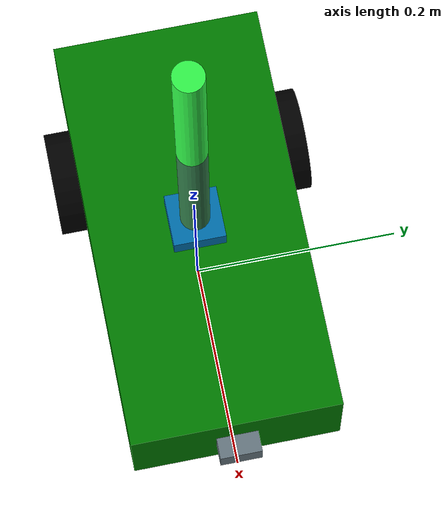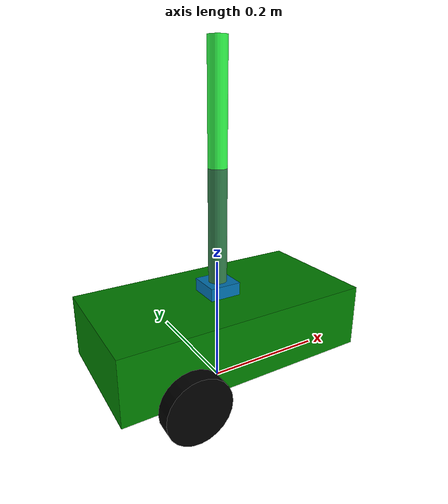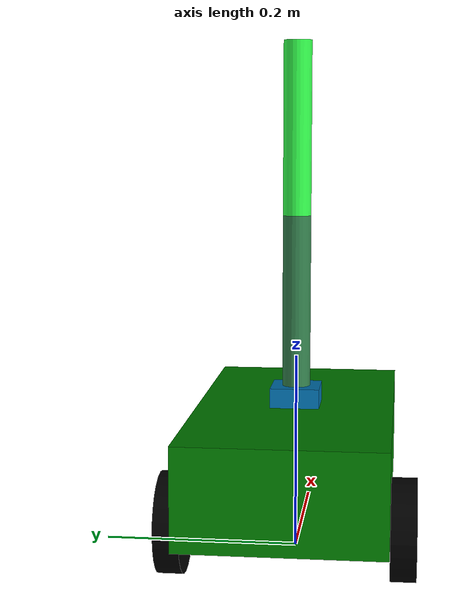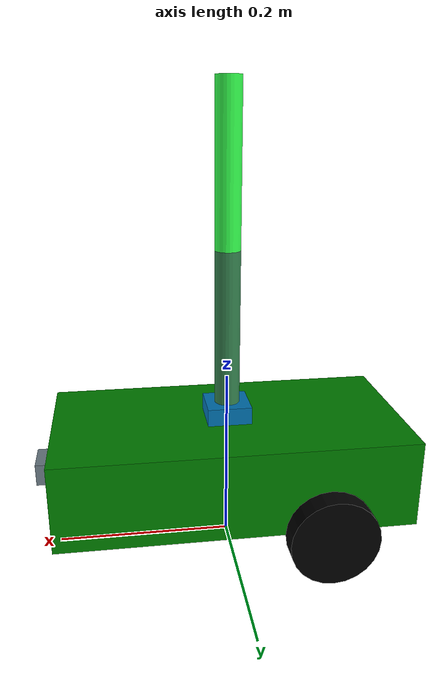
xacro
<?xml version="1.0"?>
<robot xmlns:xacro="http://www.ros.org/wiki/xacro" name="test">

    <!-- Creating Variables -->
    <!-- Base Variables -->
    <xacro:property name='base_length' value='0.4'/>
    <xacro:property name='base_width' value='0.2'/>
    <xacro:property name='base_height' value='0.1'/>

    <!-- Wheels variables -->
    <xacro:property name='wheel_radius' value='${base_length / 8.0}'/>
    <xacro:property name='wheel_length' value='${wheel_radius / 2.0}'/>

    <!-- correct inertia -->
    <xacro:property name='correction' value='2'/>

    <xacro:include filename="macros.xacro"/>

    <material name='green'>
        <color rgba="0.0 0.5 0.0 1.0"/>
    </material>
    <material name="black">
        <color rgba="0.0 0.0 0.0 1.0"/>
    </material>

    <!-- base_foot joints -->
    <link name="foot"/>
    <link name="base_link">

        <visual>
            <geometry>
                <box size="${base_length} ${base_width} ${base_height}"/>
            </geometry>
            <origin xyz="0.0 0.0 ${base_height / 2.0}" rpy="0.0 0.0 0.0"/>
            <material name="green"/>
        </visual>

        <collision>
            <geometry>
                <box size="${base_length} ${base_width} ${base_height}"/>
            </geometry>
            <origin xyz="0.0 0.0 ${base_height / 2.0}" rpy="0.0 0.0 0.0"/>
            <material name="green"/>
        </collision>

        <xacro:box_inertia m='2.0' l='${correction * base_length}' w='${correction * base_width}' h='${correction * base_height}' xyz="0.0 0.0 ${base_height / 2.0}" rpy="0.0 0.0 0.0"/>
    </link>

    <joint name="base_foot" type="fixed">
        <parent link="foot"/>
        <child link="base_link"/>
        <origin xyz="0.0 0 ${base_height / 2.0}" rpy="0 0.0 0.0"/>
    </joint>

    <!-- adding camera -->
    <xacro:include filename="camera.xacro"/>
    <xacro:include filename="arm.xacro"/>

    <!-- left wheel joint -->
    <link name="left_wheel_link">
        <visual>
            <geometry>
                <cylinder radius="${wheel_radius}" length="${wheel_length}"/>
            </geometry>
            <origin xyz="0.0 0.0 0.0" rpy="0.0 0.0 0.0"/>
            <material name="black"/>
        </visual>

        <collision>
            <geometry>
                <cylinder radius="${wheel_radius}" length="${wheel_length}"/>
            </geometry>
            <origin xyz="0.0 0.0 0.0" rpy="0.0 0.0 0.0"/>
        </collision>
        <xacro:cylinder_inertia m='0.25' r='${correction * wheel_radius}' h='${correction * wheel_length}' xyz="0.0 0.0 0.0" rpy="0.0 0.0 0.0" />
    </link>

    <joint name="base_left_wheel_joint" type="continuous">
        <parent link="base_link"/>
        <child link="left_wheel_link"/>
        <origin xyz="${-base_length / 4.0} ${-base_width / 2.0 + -wheel_length / 2.0} 0.0" rpy="${pi / 2.0} 0.0 0.0"/>
        <axis xyz="0.0 0.0 -1"/>
    </joint>

    <!-- right wheel joint -->
    <link name="right_wheel_link">
        <visual>
            <geometry>
                <cylinder radius="${wheel_radius}" length="${wheel_length}"/>
            </geometry>
            <origin xyz="0.0 0.0 0.0" rpy="0.0 0.0 0.0"/>
            <material name="black"/>
        </visual>

        <collision>
            <geometry>
                <cylinder radius="${wheel_radius}" length="${wheel_length}"/>
            </geometry>
            <origin xyz="0.0 0.0 0.0" rpy="0.0 0.0 0.0"/>
        </collision>

        <xacro:cylinder_inertia m='0.25' r='${correction * wheel_radius}' h='${correction * wheel_length}' xyz="0.0 0.0 0.0" rpy="0.0 0.0 0.0" />
    </link>

    <joint name="base_right_wheel_joint" type="continuous">
        <parent link="base_link"/>
        <child link="right_wheel_link"/>
        <origin xyz="${-base_length / 4.0} ${base_width / 2.0 + wheel_length / 2.0} 0.0" rpy="${pi / 2.0} 0.0 0.0"/>
        <axis xyz="0.0 0.0 -1"/>
    </joint>

    <!-- front sphere joint -->
    <link name="front_sphere">
        <visual>
            <geometry>
                <sphere radius="${wheel_radius / 2.0}"/>
            </geometry>
            <origin xyz="0.0 0.0 0.0" rpy="0.0 0.0 0.0"/>
            <material name="black"/>
        </visual>
        <collision>
            <geometry>
                <sphere radius="${wheel_radius / 2.0}"/>
            </geometry>
            <origin xyz="0.0 0.0 0.0" rpy="0.0 0.0 0.0"/>
        </collision>
        <xacro:sphere_inertia m='0.5' r='${correction * wheel_radius / 2.0}' xyz="0.0 0.0 0.0" rpy="0.0 0.0 0.0"/>
    </link>

    <joint name="base_sphere_joint" type="fixed">
        <parent link="base_link"/>
        <child link="front_sphere"/>
        <origin xyz="${base_length / 4.0} 0 ${-wheel_radius / 2.0}" rpy="0 0.0 0.0"/>
    </joint>

</robot>

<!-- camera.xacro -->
<robot xmlns:xacro="http://www.ros.org/wiki/xacro" name="test">
    <xacro:property name='camera_length' value='${base_length/20}'/>
    <xacro:property name='camera_width' value='${base_width/5.0}'/>
    <xacro:property name='camera_height' value='${base_height/4.0}'/>

    <material name='camera_color'>
        <color rgba="0.4196078431372549 0.48627450980392156 0.5215686274509804 1.0"/>
    </material>

    <!-- fix for opencv -->
    <link name="camera_link">
        <visual>
            <origin xyz="0.0 0.0 0.0" rpy="0.0 0.0 0.0"/>
            <geometry>
                <box size="${camera_length} ${camera_width} ${camera_height}"/>
            </geometry>
            <material name="camera_color"/>
            <xacro:box_inertia m='0.05' l='${correction * camera_length}' w='${correction * camera_width}' h='${correction * camera_height}' xyz="0.0 0.0 0.0" rpy="0.0 0.0 0.0"/>
            <collision>
                <origin xyz="0.0 0.0 0.0" rpy="0.0 0.0 0.0"/>
                <geometry>
                    <box size="${base_length/20} ${base_width/10.0} ${base_height/3.0}"/>
                </geometry>
            </collision>
        </visual>

    </link>
    <joint name="base_camera" type="fixed">
        <parent link="base_link"/>
        <child link="camera_link"/>
        <origin xyz="${base_length/2.0 + camera_length/2.0} 0.0 ${base_height/2.0}" rpy="0 0.0 0.0"/>
    </joint>

    <!-- This is a fix for opencv -->
    <link name="camera_link_optical"></link>
    <joint name="camera_optical_joint" type="fixed">
        <origin xyz="0 0 0" rpy="${-pi/2} 0 ${-pi/2}"/>
        <parent link="camera_link"/>
        <child link="camera_link_optical"/>
      </joint>

    <gazebo reference='camera_link'>
        <material>Gazebo/Red</material>
        <sensor name="camera_sensor" type="camera" update_rate="10.0">
            <parent link="camera_link"/>
            <origin xyz="0.0 0.0 0.0" rpy="0.0 0.0 0.0"/>
            <visualize>true</visualize>
            <plugin name="camera_driver" filename="libgazebo_ros_camera.so">
                <frame_name>camera_link_optical</frame_name>
            </plugin>
        </sensor>
    </gazebo>
</robot>

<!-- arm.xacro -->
<robot xmlns:xacro="http://www.ros.org/wiki/xacro" name='arm'>

    <xacro:include filename="macros.xacro"/>
    <xacro:property name='box_placement' value='${base_height}'/>

    <xacro:property name='box_length' value='0.05'/>
    <xacro:property name='box_width' value='0.05'/>
    <xacro:property name='box_height' value='0.02'/>

    <xacro:property name='cylinder_length' value='${box_length * 3.5}'/>
    <xacro:property name='cylinder_radius' value='${box_width/3.5}'/>

    <material name='arm1'>
        <color rgba="0.2 0.5 0.3 1.0"/>
    </material>
    <material name='arm2'>
        <color rgba="0.2 1 0.3 1.0"/>
    </material>

    <link name="arm_base">
        <visual>
            <origin xyz="0.0 0.0 0.0" rpy="0.0 0.0 0.0"/>
            <geometry>
                <box size="${box_length} ${box_width} ${box_height}"/>
            </geometry>
        </visual>
        <xacro:box_inertia m='0.05' l='${box_length}' w='${box_width}' h='${box_height}' xyz='0.0 0.0 0.0' rpy='0.0 0.0 0.0'/>
        <collision>
            <geometry>
                <box size="${box_length} ${box_width} ${box_height}"/>
            </geometry>
        </collision>

    </link>

    <joint name="base_armbase" type="fixed">
        <parent link="base_link"/>
        <child link="arm_base"/>
        <origin xyz="0.0 0.0 ${box_placement + box_height/2.0}" rpy="0.0 0.0 0.0"/>
    </joint>

    <link name="first_arm_link">
        <visual>
            <origin xyz="0.0 0.0 ${cylinder_length/2.0}" rpy="0.0 0.0 0.0"/>
            <material name="arm1"/>
            <geometry>
                <cylinder radius="${cylinder_radius}" length="${cylinder_length}"/>
            </geometry>
        </visual>
        <collision>
            <geometry>
                <cylinder radius="${cylinder_radius}" length="${cylinder_length}"/>
            </geometry>
        </collision>
        <xacro:cylinder_inertia m='0.1' r='${1.5*cylinder_radius}' h='${1.5*cylinder_length}' xyz='0.0 0.0 0.0' rpy='0.0 0.0 0.0'/>

    </link>

    <joint name="box_arm_joint" type="revolute">
        <parent link="arm_base"/>
        <child link="first_arm_link"/>
        <axis xyz="0 1 0"/>
        <limit lower="0.0" upper="${pi/2.0}" velocity="50.0" effort="1000.0"/>
        <origin xyz="0 0 ${box_height/2.0}" rpy="0 0 0"/>
    </joint>

    <link name="second_arm_link">
        <visual>
            <origin xyz="0.0 0.0 ${cylinder_length/2.0}" rpy="0.0 0.0 0.0"/>
            <material name="arm2"/>
            <geometry>
                <cylinder radius="${cylinder_radius}" length="${cylinder_length}"/>
            </geometry>
        </visual>
        <collision>
            <geometry>
                <cylinder radius="${cylinder_radius}" length="${cylinder_length}"/>
            </geometry>
        </collision>
        <xacro:cylinder_inertia m='0.1' r='${1.5*cylinder_radius}' h='${1.5*cylinder_length}' xyz='0.0 0.0 0.0' rpy='0.0 0.0 0.0'/>

    </link>

    <joint name="second_arm_joint" type="revolute">
        <parent link="first_arm_link"/>
        <child link="second_arm_link"/>
        <axis xyz="0 1 0"/>
        <limit lower="0.0" upper="${pi/2.0}" velocity="50.0" effort="1000.0"/>
        <origin xyz="0 0 ${cylinder_length}" rpy="0 0 0"/>
    </joint>

</robot>
